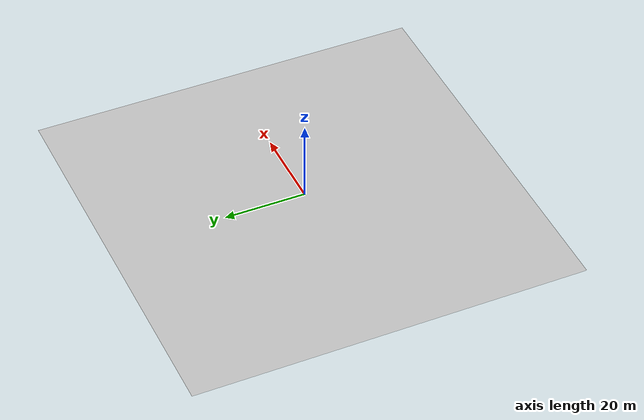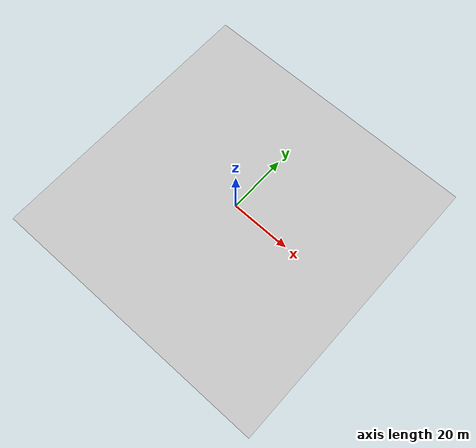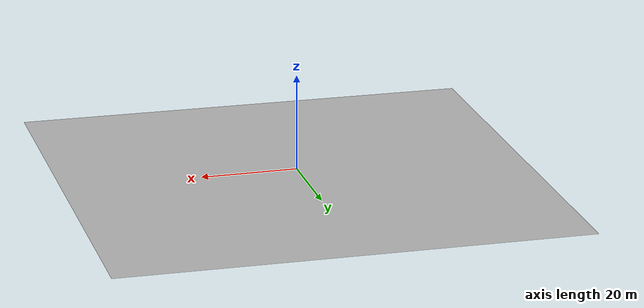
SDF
<?xml version="1.0" ?>
<sdf version="1.5">
  <model name="grass">
    <pose>0 0 -1.3  0 0 0</pose>
    <static>true</static>
    <link name="body">
      <visual name="visual">
        <geometry>
          <mesh><uri>model://grass/media/grass.dae</uri></mesh>
        </geometry>
        <material>
          <script>
            <uri>model://grass/media/Textures/</uri>
          </script>
        </material>
      </visual>
      <collision name="collision">
        <geometry>
          <mesh><uri>model://grass/media/grass.dae</uri></mesh>
        </geometry>
      </collision>
    </link>
  </model>
</sdf>
